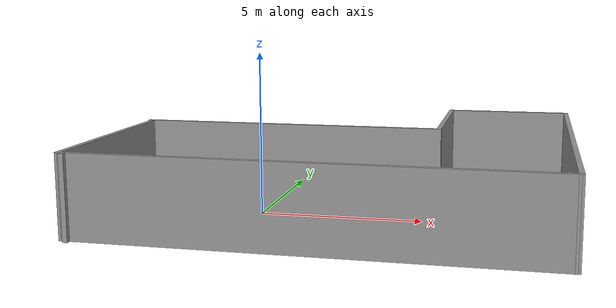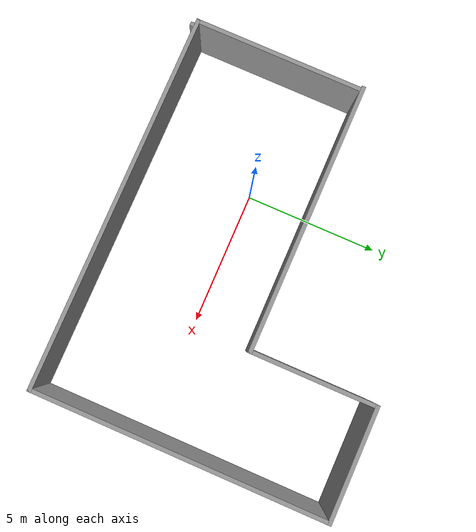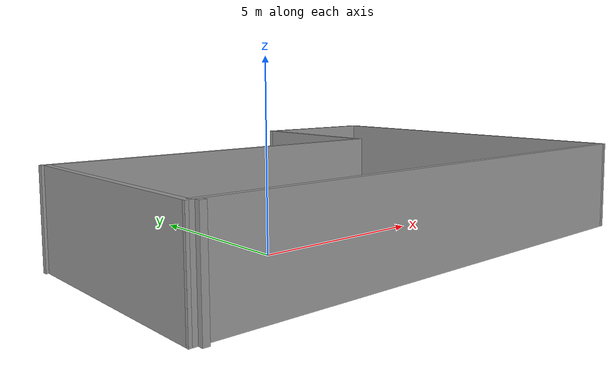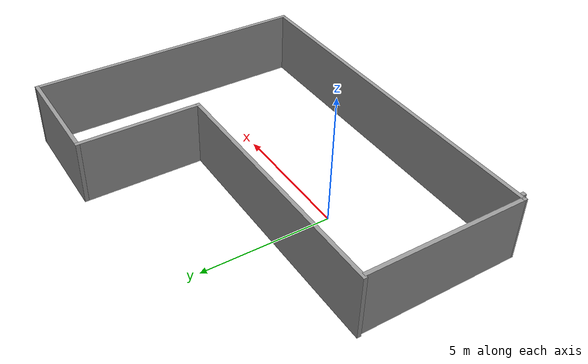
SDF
<?xml version='1.0'?>
<sdf version='1.7'>
  <model name='simple_building'>
    <pose>2.3651 1.315 0 0 -0 0</pose>
    <link name='Wall_0'>
      <collision name='Wall_0_Collision'>
        <geometry>
          <box>
            <size>6.25 0.15 2.5</size>
          </box>
        </geometry>
        <pose>0 0 1.25 0 -0 0</pose>
      </collision>
      <visual name='Wall_0_Visual'>
        <pose>0 0 1.25 0 -0 0</pose>
        <geometry>
          <box>
            <size>6.25 0.15 2.5</size>
          </box>
        </geometry>
        <material>
          <script>
            <uri>file://media/materials/scripts/gazebo.material</uri>
            <name>Gazebo/Grey</name>
          </script>
          <ambient>1 1 1 1</ambient>
        </material>
        <meta>
          <layer>0</layer>
        </meta>
      </visual>
      <pose>-6.9098 -2.28752 0 0 -0 -1.5708</pose>
    </link>
    <link name='Wall_1'>
      <collision name='Wall_1_Collision'>
        <geometry>
          <box>
            <size>14.0348 0.15 2.5</size>
          </box>
        </geometry>
        <pose>0 0 1.25 0 -0 0</pose>
      </collision>
      <visual name='Wall_1_Visual'>
        <pose>0 0 1.25 0 -0 0</pose>
        <geometry>
          <box>
            <size>14.0348 0.15 2.5</size>
          </box>
        </geometry>
        <material>
          <script>
            <uri>file://media/materials/scripts/gazebo.material</uri>
            <name>Gazebo/Grey</name>
          </script>
          <ambient>1 1 1 1</ambient>
        </material>
        <meta>
          <layer>0</layer>
        </meta>
      </visual>
      <pose>0.032548 -5.35626 0 0 -0 -0.002699</pose>
    </link>
    <link name='Wall_2'>
      <collision name='Wall_2_Collision'>
        <geometry>
          <box>
            <size>11 0.15 2.5</size>
          </box>
        </geometry>
        <pose>0 0 1.25 0 -0 0</pose>
      </collision>
      <visual name='Wall_2_Visual'>
        <pose>0 0 1.25 0 -0 0</pose>
        <geometry>
          <box>
            <size>11 0.15 2.5</size>
          </box>
        </geometry>
        <material>
          <script>
            <uri>file://media/materials/scripts/gazebo.material</uri>
            <name>Gazebo/Grey</name>
          </script>
          <ambient>1 1 1 1</ambient>
        </material>
        <meta>
          <layer>0</layer>
        </meta>
      </visual>
      <pose>6.9749 0.049999 0 0 -0 1.5708</pose>
    </link>
    <link name='Wall_3'>
      <collision name='Wall_3_Collision'>
        <geometry>
          <box>
            <size>4.25 0.15 2.5</size>
          </box>
        </geometry>
        <pose>0 0 1.25 0 -0 0</pose>
      </collision>
      <visual name='Wall_3_Visual'>
        <pose>0 0 1.25 0 -0 0</pose>
        <geometry>
          <box>
            <size>4.25 0.15 2.5</size>
          </box>
        </geometry>
        <material>
          <script>
            <uri>file://media/materials/scripts/gazebo.material</uri>
            <name>Gazebo/Grey</name>
          </script>
          <ambient>1 1 1 1</ambient>
        </material>
        <meta>
          <layer>0</layer>
        </meta>
      </visual>
      <pose>4.9249 5.475 0 0 -0 3.14159</pose>
    </link>
    <link name='Wall_4'>
      <collision name='Wall_4_Collision'>
        <geometry>
          <box>
            <size>4.75 0.15 2.5</size>
          </box>
        </geometry>
        <pose>0 0 1.25 0 -0 0</pose>
      </collision>
      <visual name='Wall_4_Visual'>
        <pose>0 0 1.25 0 -0 0</pose>
        <geometry>
          <box>
            <size>4.75 0.15 2.5</size>
          </box>
        </geometry>
        <material>
          <script>
            <uri>file://media/materials/scripts/gazebo.material</uri>
            <name>Gazebo/Grey</name>
          </script>
          <ambient>1 1 1 1</ambient>
        </material>
        <meta>
          <layer>0</layer>
        </meta>
      </visual>
      <pose>2.8749 3.175 0 0 -0 -1.5708</pose>
    </link>
    <link name='Wall_5'>
      <collision name='Wall_5_Collision'>
        <geometry>
          <box>
            <size>10 0.15 2.5</size>
          </box>
        </geometry>
        <pose>0 0 1.25 0 -0 0</pose>
      </collision>
      <visual name='Wall_5_Visual'>
        <pose>0 0 1.25 0 -0 0</pose>
        <geometry>
          <box>
            <size>10 0.15 2.5</size>
          </box>
        </geometry>
        <material>
          <script>
            <uri>file://media/materials/scripts/gazebo.material</uri>
            <name>Gazebo/Grey</name>
          </script>
          <ambient>1 1 1 1</ambient>
        </material>
        <meta>
          <layer>0</layer>
        </meta>
      </visual>
      <pose>-2.0501 0.875 0 0 -0 3.14159</pose>
    </link>
    <link name='Wall_7'>
      <collision name='Wall_7_Collision'>
        <geometry>
          <box>
            <size>0.15 0.15 2.5</size>
          </box>
        </geometry>
        <pose>0 0 1.25 0 -0 0</pose>
      </collision>
      <visual name='Wall_7_Visual'>
        <pose>0 0 1.25 0 -0 0</pose>
        <geometry>
          <box>
            <size>0.15 0.15 2.5</size>
          </box>
        </geometry>
        <material>
          <script>
            <uri>file://media/materials/scripts/gazebo.material</uri>
            <name>Gazebo/Grey</name>
          </script>
          <ambient>1 1 1 1</ambient>
        </material>
        <meta>
          <layer>0</layer>
        </meta>
      </visual>
      <pose>-6.7251 -5.475 0 0 -0 0</pose>
    </link>
    <static>1</static>
  </model>
</sdf>
